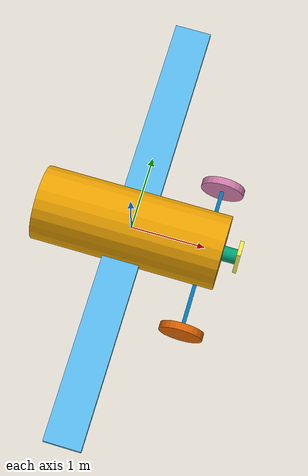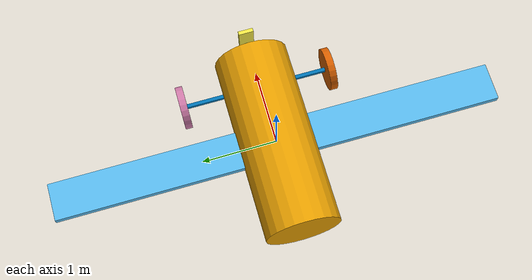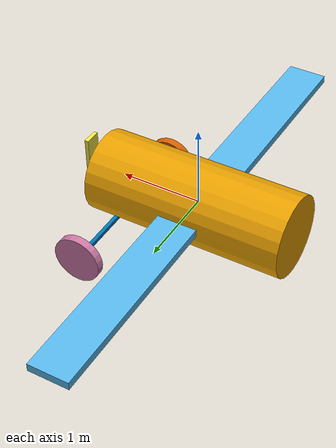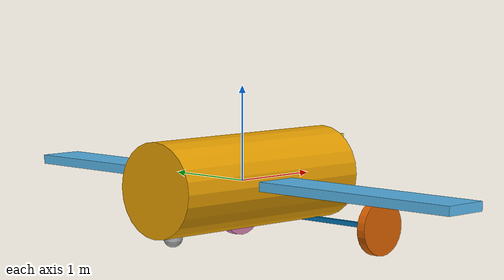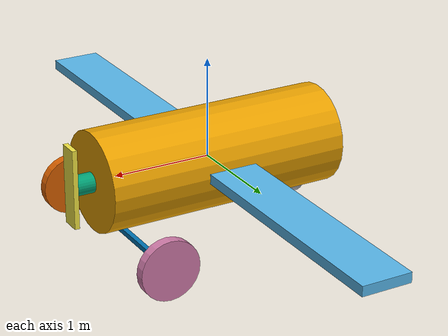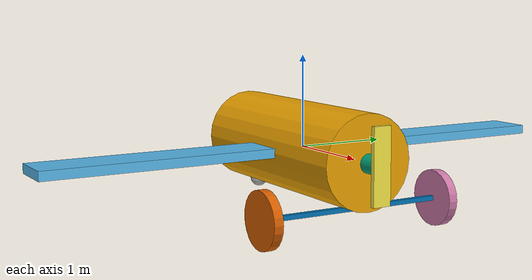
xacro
<?xml version="1.0"?>
<robot name="plane" xmlns:xacro="http://www.ros.org/wiki/xacro">

<!-- body, airfoil sizes -->
<xacro:property name="body_s" value="1" />
<xacro:property name="airfoil_s" value="1" />
<xacro:property name="pi" value="3.1415" />

<!-- body link -->
<xacro:property name="body_h" value="${2.5*body_s}" />
<xacro:property name="body_r" value="${0.5*body_s}" />
<xacro:property name="body_m" value="${body_s/10}" />

    <link name="body_FLU">
        <visual>
            <origin rpy="0 -${pi/2} 0 " />
            <geometry>
                <cylinder radius="${body_r}" length="${body_h}" />
            </geometry>
        </visual>

        <collision>
            <origin rpy="0 -${pi/2} 0 " />
            <geometry>
                <cylinder radius="${body_r}" length="${body_h}" />
            </geometry>
        </collision>

        <inertial>
            <origin rpy="0 -${pi/2} 0 " />
            <mass value="${body_m}" />
            <inertia ixx="${1/12*(3*body_r*body_r+body_h*body_h)*body_m}" ixy="0" ixz="0" iyz="0"
                iyy="${1/12*(3*body_r*body_r+body_h*body_h)*body_m}" izz="${1/2*body_m*body_r*body_r}" />
        </inertial>

    </link>
    ----------------------------------------------------------------------------  wing
<!-- airfoil link -->
<xacro:property name="airfoil_x" value="${airfoil_s/2}" />
<xacro:property name="airfoil_y" value="${airfoil_s*6}" />
<xacro:property name="airfoil_z" value="${airfoil_s/10}" />
<xacro:property name="airfoil_m" value="2" />

    <link name="airfoil">
        <visual>
            <geometry>
                <box size="${airfoil_x} ${airfoil_y} ${airfoil_z}" />
            </geometry>
        </visual>

        <collision>
            <geometry>
                <box size="${airfoil_x} ${airfoil_y} ${airfoil_z}" />
            </geometry>
        </collision>

         <inertial>
            <mass value="${airfoil_m}" />
            <inertia ixx="${1/12*airfoil_m*(airfoil_y*airfoil_y+airfoil_z*airfoil_z)}" ixy="0" ixz="0" iyz="0"
                iyy="${1/12*airfoil_m*(airfoil_x*airfoil_x+airfoil_z*airfoil_z)}" izz="${1/12*airfoil_m*(airfoil_x*airfoil_x+airfoil_y*airfoil_y)}" />
        </inertial>
    </link>

    <joint name="body_FLUToWing" type="revolute">
        <origin xyz="0 0 0" rpy ="0 0 0"/>
        <parent link="body_FLU" />
        <child link="airfoil" />
        <limit effort="1000.0" lower="-0.000872665" upper="0.000872665" velocity="0.5"/>
    </joint>

 -----------------------------------------------------------------------------------propeller
<!-- arm link -->
<xacro:property name="arm_m" value="${body_m/2}" />
<xacro:property name="arm_r" value="${body_r/5}" />
<xacro:property name="arm_h" value="${body_h/12}" />

    <link name="arm">
        <visual>
            <origin xyz="${arm_h/2} 0 0" rpy="0 ${pi/2} 0"/>
            <geometry>
                <cylinder radius="${arm_r}" length="${arm_h}" />
            </geometry>
        </visual>

        <collision>
            <origin xyz="${arm_h/2} 0 0" rpy="0 ${pi/2} 0"/>
            <geometry>
                <cylinder radius="${arm_r}" length="${arm_h}" />
            </geometry>
        </collision>

        <inertial>
            <origin xyz="${arm_h/2} 0 0" />
            <mass value="${arm_m}" />
            <inertia ixx="${1/12*arm_m*arm_h*arm_h+1/4*arm_m*arm_r*arm_r}" ixy="0" ixz="0" iyz="0"
                iyy="${1/12*arm_m*arm_h*arm_h+1/4*arm_m*arm_r*arm_r}" izz="${1/2*arm_m*arm_r*arm_r}" />
        </inertial>
    </link>

    <joint name="body_FLU_to_arm" type="continuous">
        <origin xyz="${body_h/2} 0 0" rpy="0 0 0" />
        <axis xyz="1 0 0" />
        <parent link="body_FLU" />
        <child link="arm" />
    </joint>

<!-- propeller link -->
<xacro:property name="propeller_m" value="${body_m/2}" />
<xacro:property name="propeller_x" value="${0.8*body_s}" />
<xacro:property name="propeller_y" value="${0.2*body_s}" />
<xacro:property name="propeller_z" value="${0.05*body_s}" />
    <link name="propeller">
        <visual>
            <geometry>
                <box size="${propeller_x} ${propeller_y} ${propeller_z}" />
            </geometry>
        </visual>

        <collision>
            <geometry>
                <box size="${propeller_x} ${propeller_y} ${propeller_z}" />
            </geometry>
        </collision>

        <inertial>
            <mass value="${propeller_m}" />
           <inertia ixx="${1/12*propeller_m*(propeller_y*propeller_y+propeller_z*propeller_z)}" ixy="0" ixz="0" iyz="0"
                iyy="${1/12*propeller_m*(propeller_x*propeller_x+propeller_z*propeller_z)}" izz="${1/12*propeller_m*(propeller_x*propeller_x+propeller_y*propeller_y)}" />
        </inertial>

    </link>

    <joint name="arm_to_propeller" type="fixed">
        <origin xyz="${arm_h} 0 0" rpy="0 ${pi/2} 0" />
        <parent link="arm" />
        <child link="propeller" />
    </joint>

     ---------------------------------------------------------------------------front wheels

     <!-- wheel_base_link -->
<xacro:property name="wheel_base_m" value="${0.5*body_m}" />
<xacro:property name="wheel_base_x" value="${0.05*body_s}" />
<xacro:property name="wheel_base_y" value="${2*body_s}" />
<xacro:property name="wheel_base_z" value="${0.05*body_s}" />

    <link name="wheel_base">
        <visual>
            <geometry>
                <box size="${wheel_base_x} ${wheel_base_y} ${wheel_base_z}" />
            </geometry>
        </visual>

        <collision>
            <geometry>
                <box size="${wheel_base_x} ${wheel_base_y} ${wheel_base_z}" />
            </geometry>
        </collision>

        <inertial>
            <mass value="${wheel_base_m}" />
            <inertia ixx="${1/12*wheel_base_m*(wheel_base_y*wheel_base_y+wheel_base_z*wheel_base_z)}" ixy="0" ixz="0" iyz="0"
                iyy="${1/12*wheel_base_m*(wheel_base_x*wheel_base_x+wheel_base_z*wheel_base_z)}" izz="${1/12*wheel_base_m*(wheel_base_x*wheel_base_x+wheel_base_y*propeller_y)}" />
        </inertial>

    </link>

    <joint name=" body_FLU_to_wheel_base" type="fixed">
        <origin xyz="${0.4*body_h} 0 -${body_r}" rpy="0 0 0" />
        <parent link="body_FLU" />
        <child link="wheel_base" />
    </joint>

<!-- left wheel link -->
<xacro:property name="left_wheel_m" value="${body_m/2}" />
<xacro:property name="left_wheel_r" value="${0.3*body_s}" />
<xacro:property name="left_wheel_h" value="${0.1*body_s}" />

    <link name="left_wheel">
        <visual>
            <origin xyz="0 0 ${left_wheel_h/2}" />
            <geometry>
                <cylinder radius="${left_wheel_r}" length="${left_wheel_h}" />
            </geometry>
        </visual>

        <collision>
            <origin xyz="0 0 ${left_wheel_h/2}" />
            <geometry>
                <cylinder radius="${left_wheel_r}" length="${left_wheel_h}" />
            </geometry>
        </collision>

        <inertial>
            <origin xyz="0 0 ${left_wheel_h/2}" />
            <mass value="${left_wheel_m}" />
           <inertia ixx="${1/12*left_wheel_m*left_wheel_h*left_wheel_h+1/4*left_wheel_m*left_wheel_r*left_wheel_r}" ixy="0" ixz="0" iyz="0"
                iyy="${1/12*left_wheel_m*left_wheel_h*left_wheel_h+1/4*left_wheel_m*left_wheel_r*left_wheel_r}" izz="${1/2*left_wheel_m*left_wheel_r*left_wheel_r}" />
        </inertial>
    </link>

    <joint name="wheel_base_to_left_wheel" type="continuous">
        <origin xyz="0 -${wheel_base_y/2} 0" rpy="${pi/2} 0 0" />
        <parent link="wheel_base" />
        <child link="left_wheel" />
        <axis xyz=" 0 0 1" />
    </joint>

<!-- right wheel link -->
<xacro:property name="right_wheel_m" value="${left_wheel_m}" />
<xacro:property name="right_wheel_r" value="${left_wheel_r}" />
<xacro:property name="right_wheel_h" value="${left_wheel_h}" />

    <link name="right_wheel">
        <visual>
            <origin xyz="0 0 -${right_wheel_h/2}" />
            <geometry>
                <cylinder radius="${right_wheel_r}" length="${right_wheel_h}" />
            </geometry>
        </visual>

        <collision>
            <origin xyz="0 0 -${right_wheel_h/2}" />
            <geometry>
                <cylinder radius="${right_wheel_r}" length="${right_wheel_h}" />
            </geometry>
        </collision>

        <inertial>
            <origin xyz="0 0 -${right_wheel_h/2}" />
           <mass value="${right_wheel_m}" />
           <inertia ixx="${1/12*right_wheel_m*right_wheel_h*right_wheel_h+1/4*right_wheel_m*right_wheel_r*right_wheel_r}" ixy="0" ixz="0" iyz="0"
                iyy="${1/12*right_wheel_m*right_wheel_h*right_wheel_h+1/4*right_wheel_m*right_wheel_r*right_wheel_r}" izz="${1/2*right_wheel_m*right_wheel_r*right_wheel_r}" />
        </inertial>
    </link>

    <joint name="wheel_base_to_right_wheel" type="continuous">
        <origin xyz="0 ${wheel_base_y/2} 0" rpy="${pi/2} 0 0" />
        <parent link="wheel_base" />
        <child link="right_wheel" />
        <axis xyz=" 0 0 1" />
    </joint>

    ------------------------------------------------------------------------------------ rear sphere wheel
<!-- rear wheel link -->
<xacro:property name="rear_wheel_m" value="${body_m/2}" />
<xacro:property name="rear_wheel_r" value="${0.1*body_s}" />

    <link name="rear_wheel">
        <visual>
            <geometry>
                <sphere radius="${rear_wheel_r}" />
            </geometry>
        </visual>

        <collision>
            <geometry>
                <sphere radius="${rear_wheel_r}" />
            </geometry>
        </collision>

        <inertial>
            <mass value="${rear_wheel_m}" />
            <inertia ixx="${2/5*rear_wheel_m*rear_wheel_r*rear_wheel_r}" ixy="0" ixz="0" iyz="0"
                iyy=" ${2/5*rear_wheel_m*rear_wheel_r*rear_wheel_r}" izz="${2/5*rear_wheel_m*rear_wheel_r*rear_wheel_r}" />
        </inertial>
    </link>

    <joint name="body_FLU_to_rear_wheel" type="continuous">
        <origin xyz="-${0.4*body_h} 0 -${body_r}" />
        <axis xyz="0 1 0"/>
        <parent link="body_FLU" />
        <child link="rear_wheel" />
    </joint>

<!-- model plugins -->
    <gazebo>
    <plugin name="model_plugin" filename="libmodel_plugin.so"/>
    <plugin name="joint_state_publisher" filename="libgazebo_ros_joint_state_publisher.so">
        <jointName>body_FLUToWing, body_FLU_to_arm, wheel_base_to_left_wheel, wheel_base_to_right_wheel, body_FLU_to_rear_wheel </jointName>
        <robotNamespace>last_letter_2</robotNamespace>
        <updateRate>0</updateRate>
    </plugin>
  </gazebo>

</robot>
